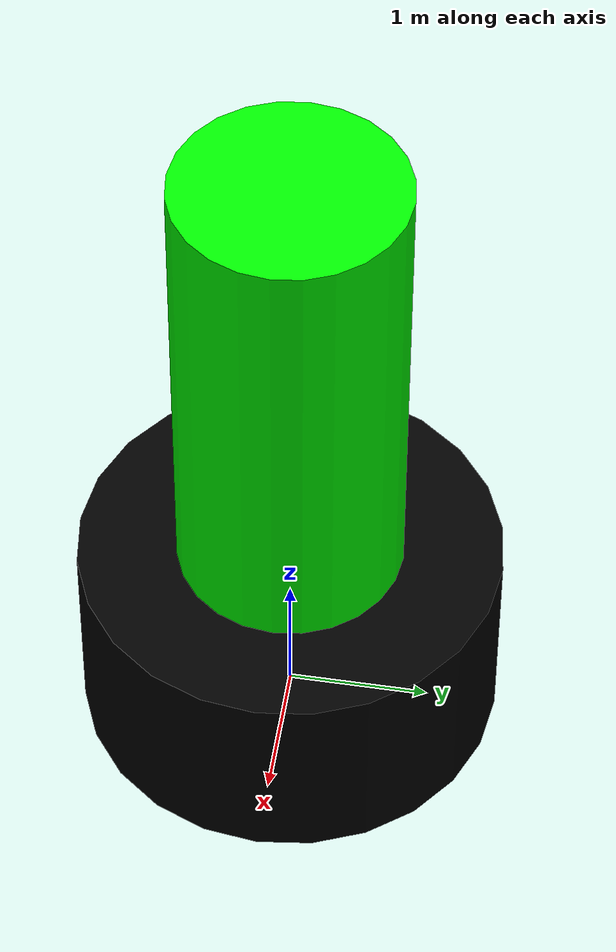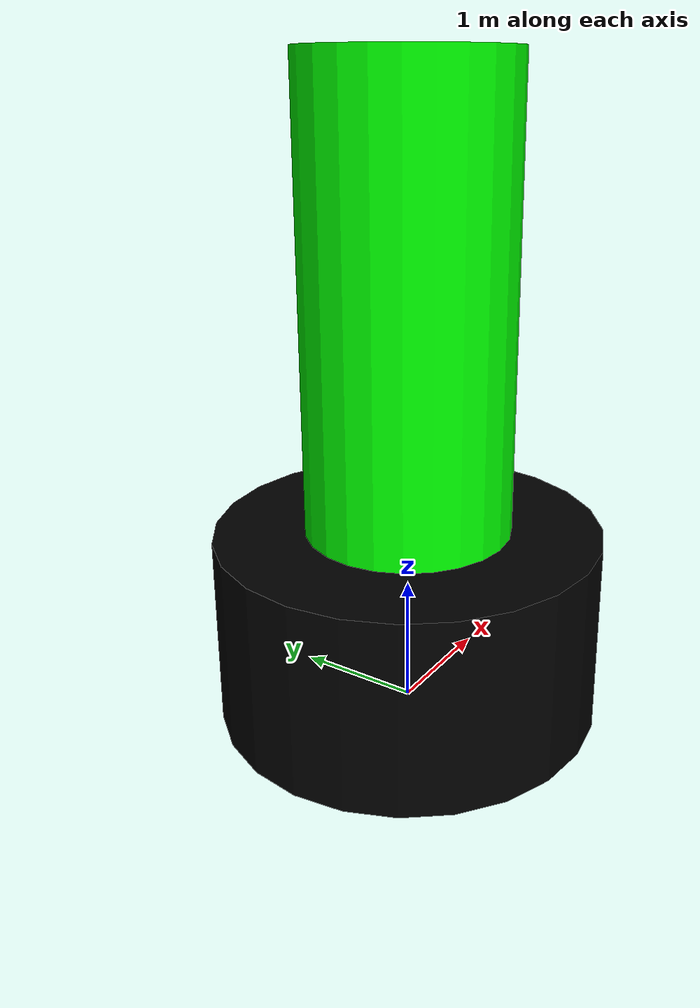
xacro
<?xml version="1.0"?>
<robot xmlns:xacro="http://www.ros.org/wiki/xacro" name="fan">

<link name="world"/>

<!-- LINKS -->
<xacro:macro name="links" params="name joint_name joint_pose parent pose r l axis color">
    <link name="${name}">
        <inertial>
            <origin xyz="0.0 0.0 0.0" rpy="0.0 0.0 0.0"/>
            <mass value="1.0"/>
            <inertia ixx="0.0" ixy="0.0" ixz="0.0" iyy="0.0" iyz="0.0" izz="0.0"/>
        </inertial>
        <visual name="">
            <origin xyz="${pose}" rpy="0.0 0.0 0.0"/>
            <geometry>
                <cylinder radius="${r}" length="${l}"/>
            </geometry>
            <material name="">
                <color rgba="${color} 1.0"/>
                <texture filename=""/>
            </material>
        </visual>
        <collision>
            <origin xyz="0.0 0.0 0.0" rpy="0.0 0.0 0.0"/>
            <geometry>
                <cylinder radius="${r}" length="${l}"/>
            </geometry>
        </collision>
    </link>

    <joint name="${joint_name}" type="revolute">
        <origin xyz="0 0 ${joint_pose}" rpy="0.0 0.0 0.0"/>
        <parent link="${parent}"/>
        <child link="${name}"/>
        <axis xyz="${axis}"/>
        <limit lower="-1.57" upper="1.57" effort="100" velocity="1"/>
    </joint>
</xacro:macro>

<xacro:links name="link1" joint_name="joint1" joint_pose="0.75" parent="world" pose="0 0 0" r="1.5" l="1.5" axis="0 0 1"  color="0 0 0"/>
<xacro:links name="link2" joint_name="joint2" joint_pose="0.75" parent="link1" pose="0 0 1.5" r="0.8" l="4" axis="0 1 0" color="0 1 0"/>

<gazebo>
  <plugin name="gazebo_ros_control" filename="libgazebo_ros_control.so">
    <robotNamespace>/fan</robotNamespace>
  </plugin>
</gazebo>

<transmission name="trans1">
    <type>transmission_interface/SimpleTransmission</type>
    <joint name="joint1">
        <hardwareInterface>hardware_interface/PositionJointInterface</hardwareInterface>
    </joint>
    <actuator name="servo1">
        <mechanicalReduction>1.0</mechanicalReduction>
        <hardwareInterface>hardware_interface/PositionJointInterface</hardwareInterface>
    </actuator>
</transmission>

<transmission name="trans2">
    <type>transmission_interface/SimpleTransmission</type>
    <joint name="joint2">
        <hardwareInterface>hardware_interface/PositionJointInterface</hardwareInterface>
    </joint>
    <actuator name="servo2">
        <mechanicalReduction>1.0</mechanicalReduction>
        <hardwareInterface>hardware_interface/PositionJointInterface</hardwareInterface>
    </actuator>
</transmission>

</robot>
